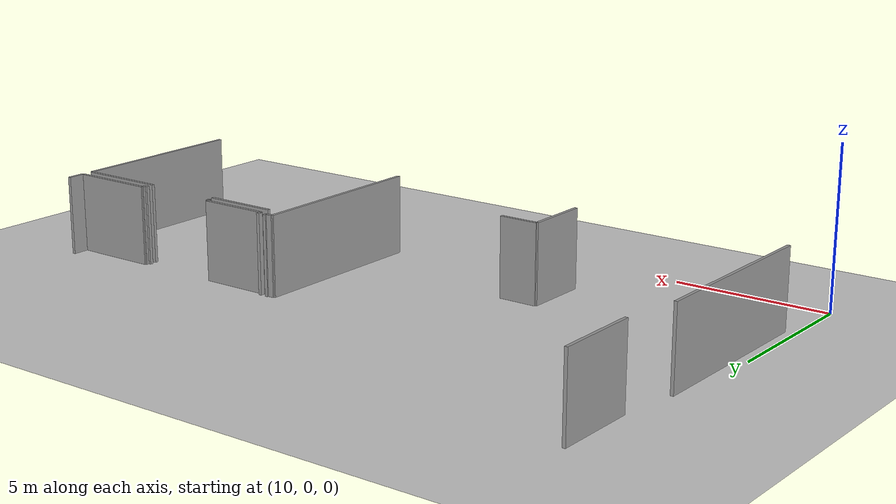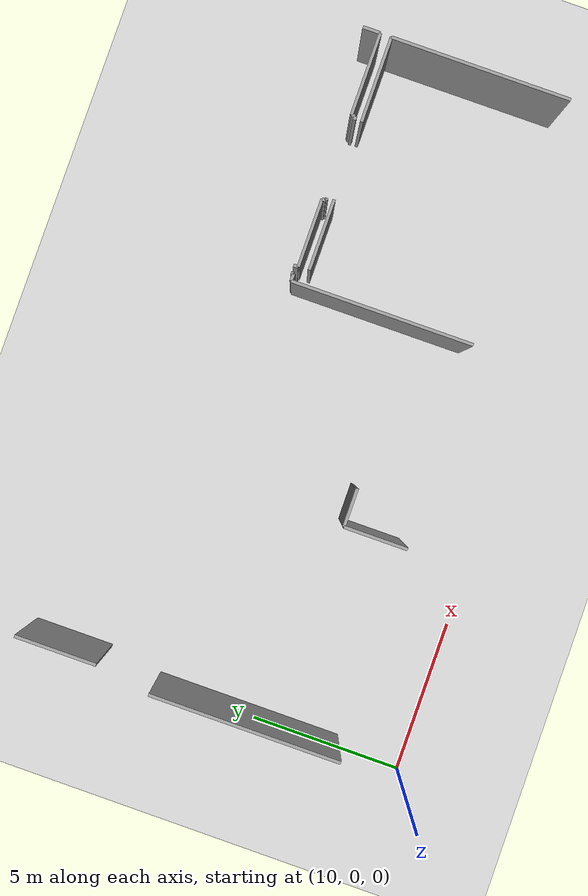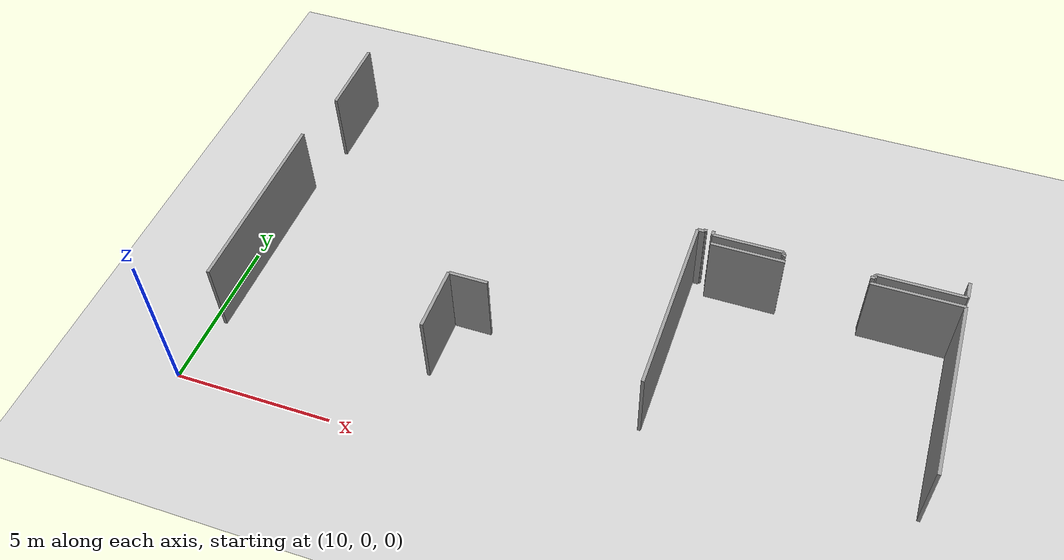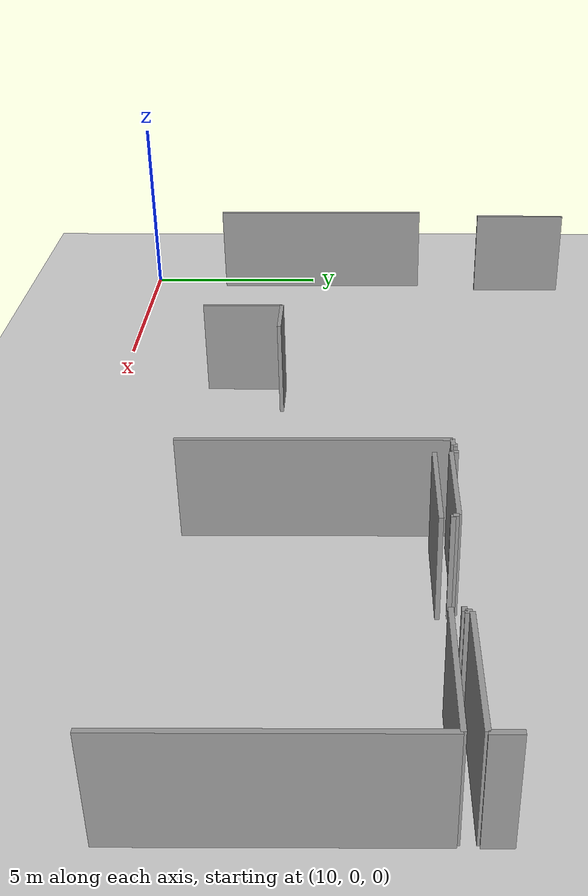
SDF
<sdf version="1.6">
 <world name="default">
  <model name="ground_plane">
   <static>1</static>
   <link name="link">
    <collision name="collision">
     <geometry><plane><normal>0 0 1</normal><size>100 100</size></plane></geometry>
     <surface><friction><ode><mu>100</mu><mu2>50</mu2></ode></friction></surface>
    </collision>
    <visual name="visual">
     <cast_shadows>0</cast_shadows>
     <geometry><plane><normal>0 0 1</normal><size>100 100</size></plane></geometry>
     <material>
      <script><uri>file://media/materials/scripts/gazebo.material</uri><name>Gazebo/Grey</name></script>
     </material>
    </visual>
   </link>
  </model>
  <model name="0510032267_A_40_1_101">
   <static>1</static>
   <link name="Wall_249">
    <collision name="Wall_249_Collision">
     <geometry><box><size>6.18011297568 0.1 2.5</size></box></geometry>
     <pose>3.09005648784 0 1.25 0 0 0</pose>
    </collision>
    <visual name="Wall_249_Visual">
     <pose>3.09005648784 0 1.25 0 0 0</pose>
     <geometry><box><size>6.18011297568 0.1 2.5</size></box></geometry>
     <material>
      <script><uri>file://media/materials/scripts/gazebo.material</uri><name>Gazebo/Grey</name></script>
      <ambient>1 1 1 1</ambient>
     </material>
    </visual>
    <pose>58.1604915522 -25.2808824557 0 0 0 -1.57079632679</pose>
   </link>
   <link name="Wall_258">
    <collision name="Wall_258_Collision">
     <geometry><box><size>2.63440484436 0.1 2.5</size></box></geometry>
     <pose>1.31720242218 0 1.25 0 0 0</pose>
    </collision>
    <visual name="Wall_258_Visual">
     <pose>1.31720242218 0 1.25 0 0 0</pose>
     <geometry><box><size>2.63440484436 0.1 2.5</size></box></geometry>
     <material>
      <script><uri>file://media/materials/scripts/gazebo.material</uri><name>Gazebo/Grey</name></script>
      <ambient>1 1 1 1</ambient>
     </material>
    </visual>
    <pose>58.4795938467 -23.4876317679 0 0 0 1.57079632679</pose>
   </link>
   <link name="Wall_261">
    <collision name="Wall_261_Collision">
     <geometry><box><size>1.23828465043 0.1 2.5</size></box></geometry>
     <pose>0.619142325215 0 1.25 0 0 0</pose>
    </collision>
    <visual name="Wall_261_Visual">
     <pose>0.619142325215 0 1.25 0 0 0</pose>
     <geometry><box><size>1.23828465043 0.1 2.5</size></box></geometry>
     <material>
      <script><uri>file://media/materials/scripts/gazebo.material</uri><name>Gazebo/Grey</name></script>
      <ambient>1 1 1 1</ambient>
     </material>
    </visual>
    <pose>66.1524091524 -29.1905527421 0 0 0 3.14159265359</pose>
   </link>
   <link name="Wall_262">
    <collision name="Wall_262_Collision">
     <geometry><box><size>2.05427661886 0.1 2.5</size></box></geometry>
     <pose>1.02713830943 0 1.25 0 0 0</pose>
    </collision>
    <visual name="Wall_262_Visual">
     <pose>1.02713830943 0 1.25 0 0 0</pose>
     <geometry><box><size>2.05427661886 0.1 2.5</size></box></geometry>
     <material>
      <script><uri>file://media/materials/scripts/gazebo.material</uri><name>Gazebo/Grey</name></script>
      <ambient>1 1 1 1</ambient>
     </material>
    </visual>
    <pose>64.914124502 -29.1905527421 0 0 0 -1.57079632679</pose>
   </link>
   <link name="Wall_434">
    <collision name="Wall_434_Collision">
     <geometry><box><size>0.0879405765699 0.1 2.5</size></box></geometry>
     <pose>0.043970288285 0 1.25 0 0 0</pose>
    </collision>
    <visual name="Wall_434_Visual">
     <pose>0.043970288285 0 1.25 0 0 0</pose>
     <geometry><box><size>0.0879405765699 0.1 2.5</size></box></geometry>
     <material>
      <script><uri>file://media/materials/scripts/gazebo.material</uri><name>Gazebo/Grey</name></script>
      <ambient>1 1 1 1</ambient>
     </material>
    </visual>
    <pose>71.6929196399 -25.0975034789 0 0 0 -1.57079632679</pose>
   </link>
   <link name="Wall_435">
    <collision name="Wall_435_Collision">
     <geometry><box><size>0.235482497665 0.1 2.5</size></box></geometry>
     <pose>0.117741248832 0 1.25 0 0 0</pose>
    </collision>
    <visual name="Wall_435_Visual">
     <pose>0.117741248832 0 1.25 0 0 0</pose>
     <geometry><box><size>0.235482497665 0.1 2.5</size></box></geometry>
     <material>
      <script><uri>file://media/materials/scripts/gazebo.material</uri><name>Gazebo/Grey</name></script>
      <ambient>1 1 1 1</ambient>
     </material>
    </visual>
    <pose>71.6929196399 -25.1854440554 0 0 0 3.14159265359</pose>
   </link>
   <link name="Wall_436">
    <collision name="Wall_436_Collision">
     <geometry><box><size>5.90269349786 0.1 2.5</size></box></geometry>
     <pose>2.95134674893 0 1.25 0 0 0</pose>
    </collision>
    <visual name="Wall_436_Visual">
     <pose>2.95134674893 0 1.25 0 0 0</pose>
     <geometry><box><size>5.90269349786 0.1 2.5</size></box></geometry>
     <material>
      <script><uri>file://media/materials/scripts/gazebo.material</uri><name>Gazebo/Grey</name></script>
      <ambient>1 1 1 1</ambient>
     </material>
    </visual>
    <pose>71.4574371422 -25.1854440554 0 0 0 -1.57079632679</pose>
   </link>
   <link name="Wall_453">
    <collision name="Wall_453_Collision">
     <geometry><box><size>0.568309621995 0.1 2.5</size></box></geometry>
     <pose>0.284154810998 0 1.25 0 0 0</pose>
    </collision>
    <visual name="Wall_453_Visual">
     <pose>0.284154810998 0 1.25 0 0 0</pose>
     <geometry><box><size>0.568309621995 0.1 2.5</size></box></geometry>
     <material>
      <script><uri>file://media/materials/scripts/gazebo.material</uri><name>Gazebo/Grey</name></script>
      <ambient>1 1 1 1</ambient>
     </material>
    </visual>
    <pose>79.5796135444 -24.6663150738 0 0 0 -1.57079632679</pose>
   </link>
   <link name="Wall_454">
    <collision name="Wall_454_Collision">
     <geometry><box><size>2.68472922054 0.1 2.5</size></box></geometry>
     <pose>1.34236461027 0 1.25 0 0 0</pose>
    </collision>
    <visual name="Wall_454_Visual">
     <pose>1.34236461027 0 1.25 0 0 0</pose>
     <geometry><box><size>2.68472922054 0.1 2.5</size></box></geometry>
     <material>
      <script><uri>file://media/materials/scripts/gazebo.material</uri><name>Gazebo/Grey</name></script>
      <ambient>1 1 1 1</ambient>
     </material>
    </visual>
    <pose>79.5796135444 -25.2346246958 0 0 0 3.14159265359</pose>
   </link>
   <link name="Wall_455">
    <collision name="Wall_455_Collision">
     <geometry><box><size>0.129877556726 0.1 2.5</size></box></geometry>
     <pose>0.0649387783631 0 1.25 0 0 0</pose>
    </collision>
    <visual name="Wall_455_Visual">
     <pose>0.0649387783631 0 1.25 0 0 0</pose>
     <geometry><box><size>0.129877556726 0.1 2.5</size></box></geometry>
     <material>
      <script><uri>file://media/materials/scripts/gazebo.material</uri><name>Gazebo/Grey</name></script>
      <ambient>1 1 1 1</ambient>
     </material>
    </visual>
    <pose>76.8948843238 -25.2346246958 0 0 0 -1.57079632679</pose>
   </link>
   <link name="Wall_456">
    <collision name="Wall_456_Collision">
     <geometry><box><size>0.122506814759 0.1 2.5</size></box></geometry>
     <pose>0.0612534073796 0 1.25 0 0 0</pose>
    </collision>
    <visual name="Wall_456_Visual">
     <pose>0.0612534073796 0 1.25 0 0 0</pose>
     <geometry><box><size>0.122506814759 0.1 2.5</size></box></geometry>
     <material>
      <script><uri>file://media/materials/scripts/gazebo.material</uri><name>Gazebo/Grey</name></script>
      <ambient>1 1 1 1</ambient>
     </material>
    </visual>
    <pose>76.8948843238 -25.3645022525 0 0 0 3.14159265359</pose>
   </link>
   <link name="Wall_457">
    <collision name="Wall_457_Collision">
     <geometry><box><size>0.0831114697641 0.1 2.5</size></box></geometry>
     <pose>0.041555734882 0 1.25 0 0 0</pose>
    </collision>
    <visual name="Wall_457_Visual">
     <pose>0.041555734882 0 1.25 0 0 0</pose>
     <geometry><box><size>0.0831114697641 0.1 2.5</size></box></geometry>
     <material>
      <script><uri>file://media/materials/scripts/gazebo.material</uri><name>Gazebo/Grey</name></script>
      <ambient>1 1 1 1</ambient>
     </material>
    </visual>
    <pose>74.2275653041 -25.3645022525 0 0 0 3.14159265359</pose>
   </link>
   <link name="Wall_458">
    <collision name="Wall_458_Collision">
     <geometry><box><size>0.118313116744 0.1 2.5</size></box></geometry>
     <pose>0.0591565583718 0 1.25 0 0 0</pose>
    </collision>
    <visual name="Wall_458_Visual">
     <pose>0.0591565583718 0 1.25 0 0 0</pose>
     <geometry><box><size>0.118313116744 0.1 2.5</size></box></geometry>
     <material>
      <script><uri>file://media/materials/scripts/gazebo.material</uri><name>Gazebo/Grey</name></script>
      <ambient>1 1 1 1</ambient>
     </material>
    </visual>
    <pose>74.1444538344 -25.3645022525 0 0 0 1.57079632679</pose>
   </link>
   <link name="Wall_459">
    <collision name="Wall_459_Collision">
     <geometry><box><size>2.20639348325 0.1 2.5</size></box></geometry>
     <pose>1.10319674162 0 1.25 0 0 0</pose>
    </collision>
    <visual name="Wall_459_Visual">
     <pose>1.10319674162 0 1.25 0 0 0</pose>
     <geometry><box><size>2.20639348325 0.1 2.5</size></box></geometry>
     <material>
      <script><uri>file://media/materials/scripts/gazebo.material</uri><name>Gazebo/Grey</name></script>
      <ambient>1 1 1 1</ambient>
     </material>
    </visual>
    <pose>74.1444538344 -25.2461891358 0 0 0 3.14159265359</pose>
   </link>
   <link name="Wall_460">
    <collision name="Wall_460_Collision">
     <geometry><box><size>0.151862700869 0.1 2.5</size></box></geometry>
     <pose>0.0759313504343 0 1.25 0 0 0</pose>
    </collision>
    <visual name="Wall_460_Visual">
     <pose>0.0759313504343 0 1.25 0 0 0</pose>
     <geometry><box><size>0.151862700869 0.1 2.5</size></box></geometry>
     <material>
      <script><uri>file://media/materials/scripts/gazebo.material</uri><name>Gazebo/Grey</name></script>
      <ambient>1 1 1 1</ambient>
     </material>
    </visual>
    <pose>71.9380603511 -25.2461891358 0 0 0 1.57079632679</pose>
   </link>
   <link name="Wall_465">
    <collision name="Wall_465_Collision">
     <geometry><box><size>2.29344448751 0.1 2.5</size></box></geometry>
     <pose>1.14672224376 0 1.25 0 0 0</pose>
    </collision>
    <visual name="Wall_465_Visual">
     <pose>1.14672224376 0 1.25 0 0 0</pose>
     <geometry><box><size>2.29344448751 0.1 2.5</size></box></geometry>
     <material>
      <script><uri>file://media/materials/scripts/gazebo.material</uri><name>Gazebo/Grey</name></script>
      <ambient>1 1 1 1</ambient>
     </material>
    </visual>
    <pose>71.9614433946 -25.5982056056 0 0 0 0.0</pose>
   </link>
   <link name="Wall_466">
    <collision name="Wall_466_Collision">
     <geometry><box><size>2.78131135666 0.1 2.5</size></box></geometry>
     <pose>1.39065567833 0 1.25 0 0 0</pose>
    </collision>
    <visual name="Wall_466_Visual">
     <pose>1.39065567833 0 1.25 0 0 0</pose>
     <geometry><box><size>2.78131135666 0.1 2.5</size></box></geometry>
     <material>
      <script><uri>file://media/materials/scripts/gazebo.material</uri><name>Gazebo/Grey</name></script>
      <ambient>1 1 1 1</ambient>
     </material>
    </visual>
    <pose>76.791312691 -25.5982056056 0 0 0 0.0</pose>
   </link>
   <link name="Wall_467">
    <collision name="Wall_467_Collision">
     <geometry><box><size>5.83864429181 0.1 2.5</size></box></geometry>
     <pose>2.9193221459 0 1.25 0 0 0</pose>
    </collision>
    <visual name="Wall_467_Visual">
     <pose>2.9193221459 0 1.25 0 0 0</pose>
     <geometry><box><size>5.83864429181 0.1 2.5</size></box></geometry>
     <material>
      <script><uri>file://media/materials/scripts/gazebo.material</uri><name>Gazebo/Grey</name></script>
      <ambient>1 1 1 1</ambient>
     </material>
    </visual>
    <pose>79.5726240477 -25.5982056056 0 0 0 -1.57079632679</pose>
   </link>
   <pose>-47.8 33.6752466975 0 0 0 0</pose>
  </model>
 </world>
</sdf>
